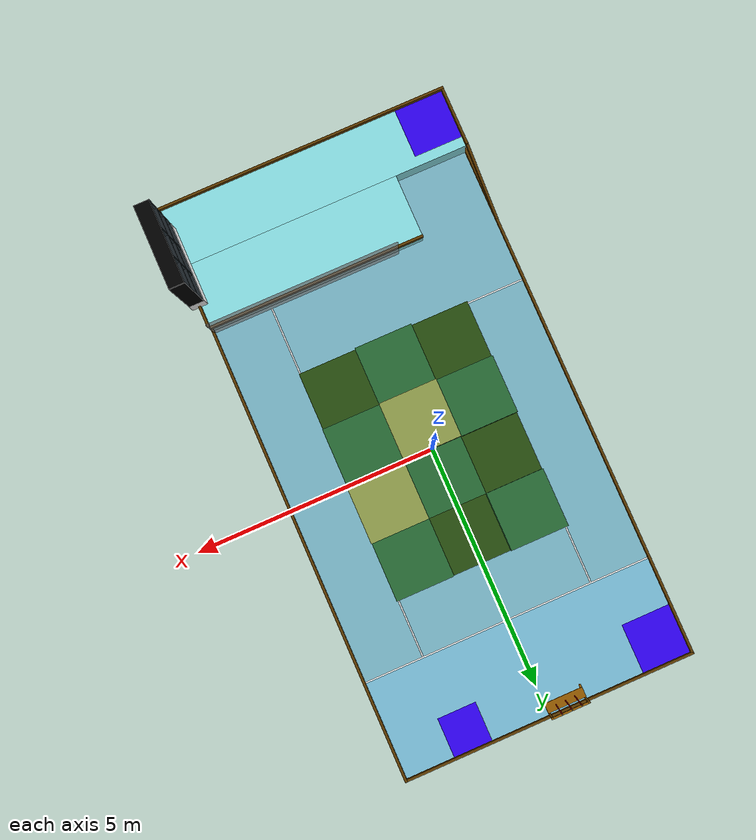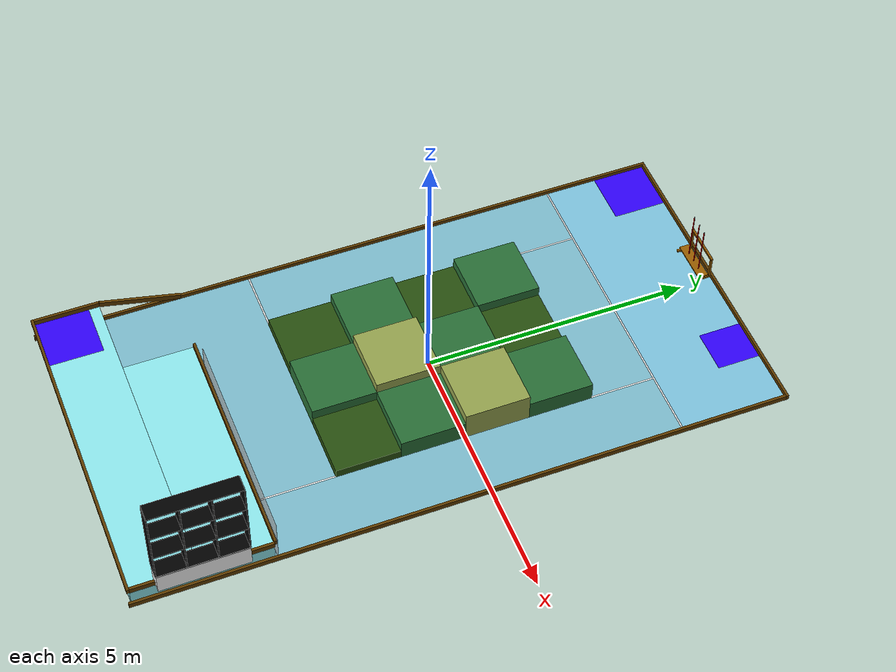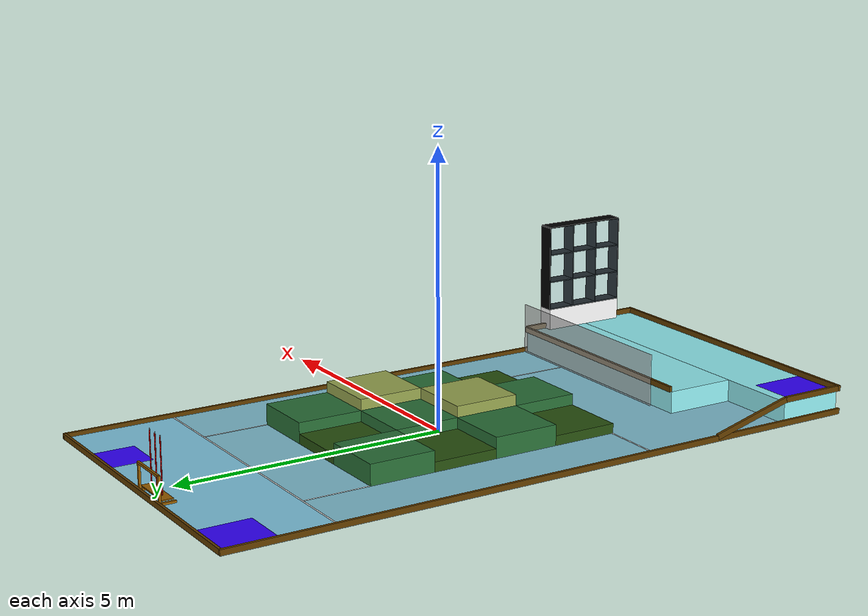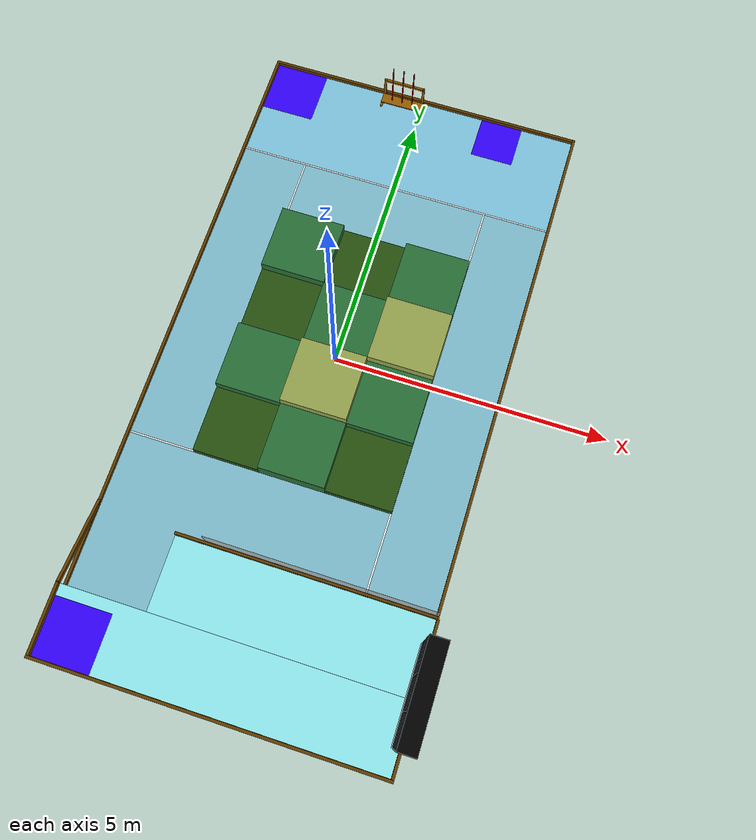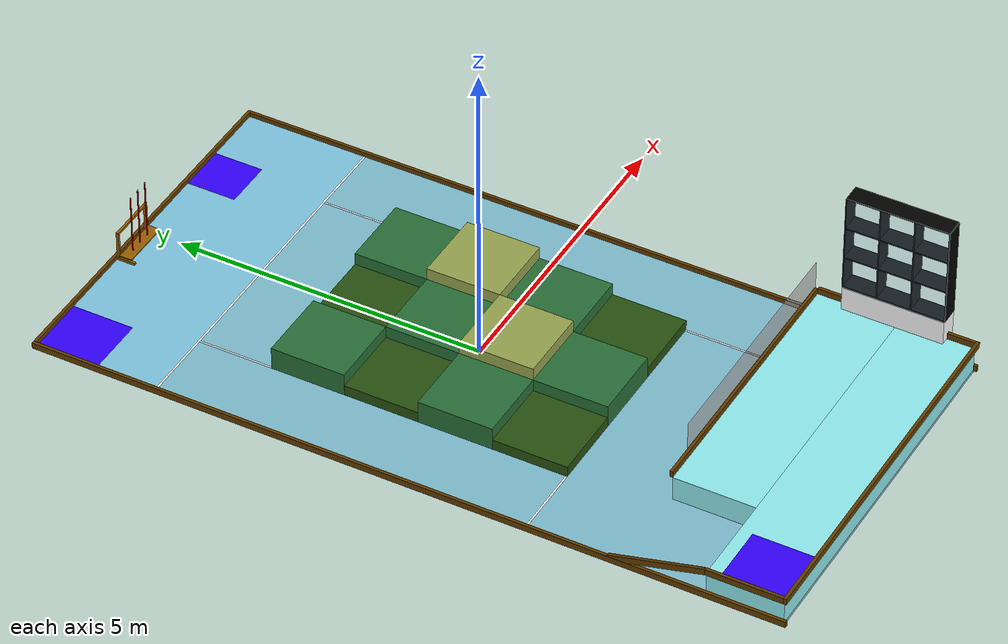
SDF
<sdf version="1.9">
 <world name="robocon_2026">
  <physics name="1ms" type="ignored">
   <max_step_size>0.001</max_step_size>
   <real_time_factor>1.0</real_time_factor>
  </physics>
  <plugin filename="gz-sim-physics-system" name="gz::sim::systems::Physics">
   <engine><filename>gz-physics-bullet-featherstone-plugin</filename></engine>
  </plugin>
  <plugin filename="gz-sim-user-commands-system" name="gz::sim::systems::UserCommands"/>
  <plugin filename="gz-sim-scene-broadcaster-system" name="gz::sim::systems::SceneBroadcaster"/>
  <plugin filename="gz-sim-imu-system" name="gz::sim::systems::Imu"/>
  <plugin filename="gz-sim-sensors-system" name="gz::sim::systems::Sensors">
   <render_engine>ogre2</render_engine>
  </plugin>
  <scene><ambient>0.4 0.4 0.4 1</ambient><background>0.7 0.7 0.7 1</background><shadows>true</shadows></scene>
  <light type="directional" name="sun">
   <pose>0 0 10 0 0 0</pose>
   <diffuse>0.9 0.85 0.8 1</diffuse>
   <specular>0.2 0.2 0.2 1</specular>
   <direction>0.5 0.1 -0.9</direction>
   <attenuation>
    <range>1000</range>
    <constant>0.9</constant>
    <linear>0.01</linear>
    <quadratic>0.001</quadratic>
   </attenuation>
  </light>
  <model name="game_field_floor_1">
   <static>true</static>
   <pose>0 4.6 0.025 0 0 0</pose>
   <link name="link">
    <collision name="collision"><geometry><box><size>6.0 2 0.05</size></box></geometry></collision>
    <visual name="visual">
     <geometry><box><size>6.0 2 0.05</size></box></geometry>
     <material>
      <ambient>0.5019607843 0.7803921569 0.8862745098 1</ambient>
      <diffuse>0.5019607843 0.7803921569 0.8862745098 1</diffuse>
      <specular>0.1 0.1 0.1 1</specular>
     </material>
    </visual>
   </link>
  </model>
  <model name="game_field_floor_2">
   <static>true</static>
   <pose>0 -1.4 0.025 0 0 0</pose>
   <link name="link">
    <collision name="collision"><geometry><box><size>6.0 10 0.05</size></box></geometry></collision>
    <visual name="visual">
     <geometry><box><size>6.0 10 0.05</size></box></geometry>
     <material>
      <ambient>0.5019607843 0.7490196078 0.8196078431 1</ambient>
      <diffuse>0.5019607843 0.7490196078 0.8196078431 1</diffuse>
      <specular>0.1 0.1 0.1 1</specular>
     </material>
    </visual>
   </link>
  </model>
  <model name="game_field_floor_3.1">
   <static>true</static>
   <pose>0.75 -4.55 0.25 0 0 0</pose>
   <link name="link">
    <collision name="collision"><geometry><box><size>4.5 1.3 0.4</size></box></geometry></collision>
    <visual name="visual">
     <geometry><box><size>4.5 1.3 0.4</size></box></geometry>
     <material>
      <ambient>0.5733333333 0.9333333333 0.9511111111 1</ambient>
      <diffuse>0.5733333333 0.9333333333 0.9511111111 1</diffuse>
      <specular>0.1 0.1 0.1 1</specular>
     </material>
    </visual>
   </link>
  </model>
  <model name="game_field_floor_3.2">
   <static>true</static>
   <pose>0 -5.8 0.25 0 0 0</pose>
   <link name="link">
    <collision name="collision"><geometry><box><size>6 1.2 0.4</size></box></geometry></collision>
    <visual name="visual">
     <geometry><box><size>6 1.2 0.4</size></box></geometry>
     <material>
      <ambient>0.5733333333 0.9333333333 0.9511111111 1</ambient>
      <diffuse>0.5733333333 0.9333333333 0.9511111111 1</diffuse>
      <specular>0.1 0.1 0.1 1</specular>
     </material>
    </visual>
   </link>
  </model>
  <model name="retry_zone_1">
   <static>true</static>
   <pose>-2.5 5.1 0.051 0 0 0</pose>
   <link name="link">
    <visual name="visual">
     <geometry><box><size>1 1 0.000001</size></box></geometry>
     <material><ambient>0.1960784314 0 1 1</ambient><diffuse>0.1960784314 0 1 1</diffuse></material>
    </visual>
   </link>
  </model>
  <model name="retry_zone_2">
   <static>true</static>
   <pose>1.6 5.2 0.051 0 0 0</pose>
   <link name="link">
    <visual name="visual">
     <geometry><box><size>0.8 0.8 0.000001</size></box></geometry>
     <material><ambient>0.1960784314 0 1 1</ambient><diffuse>0.1960784314 0 1 1</diffuse></material>
    </visual>
   </link>
  </model>
  <model name="retry_zone_3">
   <static>true</static>
   <pose>-2.5 -5.9 0.4501 0 0 0</pose>
   <link name="link">
    <visual name="visual">
     <geometry><box><size>1 1 0.000001</size></box></geometry>
     <material><ambient>0.1960784314 0 1 1</ambient><diffuse>0.1960784314 0 1 1</diffuse></material>
    </visual>
   </link>
  </model>
  <model name="mat_space_1_H">
   <static>true</static>
   <pose>0 3.615 0.05001 0 0 0</pose>
   <link name="link">
    <visual name="visual">
     <geometry><box><size>6 0.03 0.00001</size></box></geometry>
     <material><ambient>1 1 1 1</ambient><diffuse>1 1 1 1</diffuse><emissive>1 1 1 1</emissive></material>
    </visual>
   </link>
  </model>
  <model name="mat_space_2_V">
   <static>true</static>
   <pose>-1.785 3 0.05001 0 0 0</pose>
   <link name="link">
    <visual name="visual">
     <geometry><box><size>0.03 1.2 0.00001</size></box></geometry>
     <material><ambient>1 1 1 1</ambient><diffuse>1 1 1 1</diffuse><emissive>1 1 1 1</emissive></material>
    </visual>
   </link>
  </model>
  <model name="mat_space_3_V">
   <static>true</static>
   <pose>1.785 3 0.05001 0 0 0</pose>
   <link name="link">
    <visual name="visual">
     <geometry><box><size>0.03 1.2 0.00001</size></box></geometry>
     <material><ambient>1 1 1 1</ambient><diffuse>1 1 1 1</diffuse><emissive>1 1 1 1</emissive></material>
    </visual>
   </link>
  </model>
  <model name="mat_space_4_H">
   <static>true</static>
   <pose>-2.4 -2.385 0.05001 0 0 0</pose>
   <link name="link">
    <visual name="visual">
     <geometry><box><size>1.2 0.03 0.00001</size></box></geometry>
     <material><ambient>1 1 1 1</ambient><diffuse>1 1 1 1</diffuse><emissive>1 1 1 1</emissive></material>
    </visual>
   </link>
  </model>
  <model name="mat_space_5_V">
   <static>true</static>
   <pose>1.785 -3.125 0.05001 0 0 0</pose>
   <link name="link">
    <visual name="visual">
     <geometry><box><size>0.03 1.45 0.00001</size></box></geometry>
     <material><ambient>1 1 1 1</ambient><diffuse>1 1 1 1</diffuse><emissive>1 1 1 1</emissive></material>
    </visual>
   </link>
  </model>
  <model name="forest_box_1_400H">
   <static>true</static>
   <pose>-1.2 1.8 0.225 0 0 0</pose>
   <link name="link">
    <collision name="collision"><geometry><box><size>1.2 1.2 0.4</size></box></geometry></collision>
    <visual name="visual">
     <geometry><box><size>1.2 1.2 0.4</size></box></geometry>
     <material>
      <ambient>0.1647058824 0.4431372549 0.2196078431 1</ambient>
      <diffuse>0.1647058824 0.4431372549 0.2196078431 1</diffuse>
     </material>
    </visual>
   </link>
  </model>
  <model name="forest_box_2_200H">
   <static>true</static>
   <pose>0 1.8 0.125 0 0 0</pose>
   <link name="link">
    <collision name="collision"><geometry><box><size>1.2 1.2 0.2</size></box></geometry></collision>
    <visual name="visual">
     <geometry><box><size>1.2 1.2 0.2</size></box></geometry>
     <material>
      <ambient>0.1607843137 0.3215686275 0.06274509804 1</ambient>
      <diffuse>0.1607843137 0.3215686275 0.06274509804 1</diffuse>
     </material>
    </visual>
   </link>
  </model>
  <model name="forest_box_3_400H">
   <static>true</static>
   <pose>1.2 1.8 0.225 0 0 0</pose>
   <link name="link">
    <collision name="collision"><geometry><box><size>1.2 1.2 0.4</size></box></geometry></collision>
    <visual name="visual">
     <geometry><box><size>1.2 1.2 0.4</size></box></geometry>
     <material>
      <ambient>0.1647058824 0.4431372549 0.2196078431 1</ambient>
      <diffuse>0.1647058824 0.4431372549 0.2196078431 1</diffuse>
     </material>
    </visual>
   </link>
  </model>
  <model name="forest_box_4_200H">
   <static>true</static>
   <pose>-1.2 0.6 0.125 0 0 0</pose>
   <link name="link">
    <collision name="collision"><geometry><box><size>1.2 1.2 0.2</size></box></geometry></collision>
    <visual name="visual">
     <geometry><box><size>1.2 1.2 0.2</size></box></geometry>
     <material>
      <ambient>0.1607843137 0.3215686275 0.06274509804 1</ambient>
      <diffuse>0.1607843137 0.3215686275 0.06274509804 1</diffuse>
     </material>
    </visual>
   </link>
  </model>
  <model name="forest_box_5_400H">
   <static>true</static>
   <pose>0 0.6 0.225 0 0 0</pose>
   <link name="link">
    <collision name="collision"><geometry><box><size>1.2 1.2 0.4</size></box></geometry></collision>
    <visual name="visual">
     <geometry><box><size>1.2 1.2 0.4</size></box></geometry>
     <material>
      <ambient>0.1647058824 0.4431372549 0.2196078431 1</ambient>
      <diffuse>0.1647058824 0.4431372549 0.2196078431 1</diffuse>
     </material>
    </visual>
   </link>
  </model>
  <model name="forest_box_6_600H">
   <static>true</static>
   <pose>1.2 0.6 0.325 0 0 0</pose>
   <link name="link">
    <collision name="collision"><geometry><box><size>1.2 1.2 0.6</size></box></geometry></collision>
    <visual name="visual">
     <geometry><box><size>1.2 1.2 0.6</size></box></geometry>
     <material>
      <ambient>0.5960784314 0.6509803922 0.3137254902 1</ambient>
      <diffuse>0.5960784314 0.6509803922 0.3137254902 1</diffuse>
     </material>
    </visual>
   </link>
  </model>
  <model name="forest_box_7_400H">
   <static>true</static>
   <pose>-1.2 -0.6 0.225 0 0 0</pose>
   <link name="link">
    <collision name="collision"><geometry><box><size>1.2 1.2 0.4</size></box></geometry></collision>
    <visual name="visual">
     <geometry><box><size>1.2 1.2 0.4</size></box></geometry>
     <material>
      <ambient>0.1647058824 0.4431372549 0.2196078431 1</ambient>
      <diffuse>0.1647058824 0.4431372549 0.2196078431 1</diffuse>
     </material>
    </visual>
   </link>
  </model>
  <model name="forest_box_8_600H">
   <static>true</static>
   <pose>0 -0.6 0.325 0 0 0</pose>
   <link name="link">
    <collision name="collision"><geometry><box><size>1.2 1.2 0.6</size></box></geometry></collision>
    <visual name="visual">
     <geometry><box><size>1.2 1.2 0.6</size></box></geometry>
     <material>
      <ambient>0.5960784314 0.6509803922 0.3137254902 1</ambient>
      <diffuse>0.5960784314 0.6509803922 0.3137254902 1</diffuse>
     </material>
    </visual>
   </link>
  </model>
  <model name="forest_box_9_400H">
   <static>true</static>
   <pose>1.2 -0.6 0.225 0 0 0</pose>
   <link name="link">
    <collision name="collision"><geometry><box><size>1.2 1.2 0.4</size></box></geometry></collision>
    <visual name="visual">
     <geometry><box><size>1.2 1.2 0.4</size></box></geometry>
     <material>
      <ambient>0.1647058824 0.4431372549 0.2196078431 1</ambient>
      <diffuse>0.1647058824 0.4431372549 0.2196078431 1</diffuse>
     </material>
    </visual>
   </link>
  </model>
  <model name="forest_box_10_200H">
   <static>true</static>
   <pose>-1.2 -1.8 0.125 0 0 0</pose>
   <link name="link">
    <collision name="collision"><geometry><box><size>1.2 1.2 0.2</size></box></geometry></collision>
    <visual name="visual">
     <geometry><box><size>1.2 1.2 0.2</size></box></geometry>
     <material>
      <ambient>0.1607843137 0.3215686275 0.06274509804 1</ambient>
      <diffuse>0.1607843137 0.3215686275 0.06274509804 1</diffuse>
     </material>
    </visual>
   </link>
  </model>
  <model name="forest_box_11_400H">
   <static>true</static>
   <pose>0 -1.8 0.225 0 0 0</pose>
   <link name="link">
    <collision name="collision"><geometry><box><size>1.2 1.2 0.4</size></box></geometry></collision>
    <visual name="visual">
     <geometry><box><size>1.2 1.2 0.4</size></box></geometry>
     <material>
      <ambient>0.1647058824 0.4431372549 0.2196078431 1</ambient>
      <diffuse>0.1647058824 0.4431372549 0.2196078431 1</diffuse>
     </material>
    </visual>
   </link>
  </model>
  <model name="forest_box_12_200H">
   <static>true</static>
   <pose>1.2 -1.8 0.125 0 0 0</pose>
   <link name="link">
    <collision name="collision"><geometry><box><size>1.2 1.2 0.2</size></box></geometry></collision>
    <visual name="visual">
     <geometry><box><size>1.2 1.2 0.2</size></box></geometry>
     <material>
      <ambient>0.1607843137 0.3215686275 0.06274509804 1</ambient>
      <diffuse>0.1607843137 0.3215686275 0.06274509804 1</diffuse>
     </material>
    </visual>
   </link>
  </model>
  <model name="wall_north">
   <static>true</static>
   <pose>0 5.625 0.075 0 0 0</pose>
   <link name="link">
    <collision name="collision"><geometry><box><size>6.1 0.05 0.1</size></box></geometry></collision>
    <visual name="visual">
     <geometry><box><size>6.1 0.05 0.1</size></box></geometry>
     <material>
      <ambient>0.3921568627 0.2431372549 0 1</ambient>
      <diffuse>0.3921568627 0.2431372549 0 1</diffuse>
     </material>
    </visual>
   </link>
  </model>
  <model name="wall_south">
   <static>true</static>
   <pose>0 -6.425 0.5 0 0 0</pose>
   <link name="link">
    <collision name="collision"><geometry><box><size>6.1 0.05 0.1</size></box></geometry></collision>
    <visual name="visual">
     <geometry><box><size>6.1 0.05 0.1</size></box></geometry>
     <material>
      <ambient>0.3921568627 0.2431372549 0 1</ambient>
      <diffuse>0.3921568627 0.2431372549 0 1</diffuse>
     </material>
    </visual>
   </link>
  </model>
  <model name="wall_east">
   <static>true</static>
   <pose>3.025 -0.4 0.075 0 0 0</pose>
   <link name="link">
    <collision name="collision"><geometry><box><size>0.05 12.1 0.1</size></box></geometry></collision>
    <visual name="visual">
     <geometry><box><size>0.05 12.1 0.1</size></box></geometry>
     <material>
      <ambient>0.3921568627 0.2431372549 0 1</ambient>
      <diffuse>0.3921568627 0.2431372549 0 1</diffuse>
     </material>
    </visual>
   </link>
  </model>
  <model name="wall_west">
   <static>true</static>
   <pose>-3.025 -0.4 0.075 0 0 0</pose>
   <link name="link">
    <collision name="collision"><geometry><box><size>0.05 12.1 0.1</size></box></geometry></collision>
    <visual name="visual">
     <geometry><box><size>0.05 12.1 0.1</size></box></geometry>
     <material>
      <ambient>0.3921568627 0.2431372549 0 1</ambient>
      <diffuse>0.3921568627 0.2431372549 0 1</diffuse>
     </material>
    </visual>
   </link>
  </model>
  <model name="wall_south_3.1">
   <static>true</static>
   <pose>0.75 -3.875 0.5 0 0 0</pose>
   <link name="link">
    <collision name="collision"><geometry><box><size>4.5 0.05 0.1</size></box></geometry></collision>
    <visual name="visual">
     <geometry><box><size>4.5 0.05 0.1</size></box></geometry>
     <material>
      <ambient>0.3921568627 0.2431372549 0 1</ambient>
      <diffuse>0.3921568627 0.2431372549 0 1</diffuse>
     </material>
    </visual>
   </link>
  </model>
  <model name="wall_west_3.2">
   <static>true</static>
   <pose>-3.025 -5.8 0.5 0 0 0</pose>
   <link name="link">
    <collision name="collision"><geometry><box><size>0.05 1.2 0.1</size></box></geometry></collision>
    <visual name="visual">
     <geometry><box><size>0.05 1.2 0.1</size></box></geometry>
     <material>
      <ambient>0.3921568627 0.2431372549 0 1</ambient>
      <diffuse>0.3921568627 0.2431372549 0 1</diffuse>
     </material>
    </visual>
   </link>
  </model>
  <model name="wall_east_3.2">
   <static>true</static>
   <pose>3.025 -5.15 0.5 0 0 0</pose>
   <link name="link">
    <collision name="collision"><geometry><box><size>0.05 2.5 0.1</size></box></geometry></collision>
    <visual name="visual">
     <geometry><box><size>0.05 2.5 0.1</size></box></geometry>
     <material>
      <ambient>0.3921568627 0.2431372549 0 1</ambient>
      <diffuse>0.3921568627 0.2431372549 0 1</diffuse>
     </material>
    </visual>
   </link>
  </model>
  <model name="wall_west_ramp">
   <static>true</static>
   <pose>-3.025 -4.45 0.3 -0.261799 0 0</pose>
   <link name="link">
    <collision name="collision"><geometry><box><size>0.05 1.55241 0.1</size></box></geometry></collision>
    <visual name="visual">
     <geometry><box><size>0.05 1.55241 0.1</size></box></geometry>
     <material>
      <ambient>0.3921568627 0.2431372549 0 1</ambient>
      <diffuse>0.3921568627 0.2431372549 0 1</diffuse>
     </material>
    </visual>
   </link>
  </model>
  <model name="acrylic_fence">
   <static>true</static>
   <pose>1.025 -3.85 0.5 0 0 1.570796327</pose>
   <link name="link">
    <collision name="collision"><geometry><box><size>0.01 3.975 1.0</size></box></geometry></collision>
    <visual name="visual">
     <geometry><box><size>0.01 3.975 1.0</size></box></geometry>
     <transparency>0.3</transparency>
     <cast_shadows>false</cast_shadows>
    </visual>
   </link>
  </model>
  <model name="tictactoe_rack">
   <static>true</static>
   <pose>3.025 -5.15 0.45 0 0 1.570796327</pose>
   <link name="link">
    <collision name="base_col">
     <pose>0 0 0.2 0 0 0</pose>
     <geometry><box><size>1.62 0.32 0.4</size></box></geometry>
    </collision>
    <visual name="base_vis">
     <pose>0 0 0.2 0 0 0</pose>
     <geometry><box><size>1.62 0.32 0.4</size></box></geometry>
     <material><ambient>1 1 1 1</ambient><diffuse>1 1 1 1</diffuse></material>
    </visual>
    <collision name="v1_col">
     <pose>-0.81 0 1.21 0 0 0</pose>
     <geometry><box><size>0.02 0.3 1.62</size></box></geometry>
    </collision>
    <visual name="v1">
     <pose>-0.81 0 1.21 0 0 0</pose>
     <geometry><box><size>0.02 0.3 1.62</size></box></geometry>
     <material><ambient>0 0 0 1</ambient><diffuse>0 0 0 1</diffuse></material>
    </visual>
    <collision name="v2_col">
     <pose>-0.27 0 1.21 0 0 0</pose>
     <geometry><box><size>0.02 0.3 1.62</size></box></geometry>
    </collision>
    <visual name="v2">
     <pose>-0.27 0 1.21 0 0 0</pose>
     <geometry><box><size>0.02 0.3 1.62</size></box></geometry>
     <material><ambient>0 0 0 1</ambient><diffuse>0 0 0 1</diffuse></material>
    </visual>
    <collision name="v3_col">
     <pose>0.27 0 1.21 0 0 0</pose>
     <geometry><box><size>0.02 0.3 1.62</size></box></geometry>
    </collision>
    <visual name="v3">
     <pose>0.27 0 1.21 0 0 0</pose>
     <geometry><box><size>0.02 0.3 1.62</size></box></geometry>
     <material><ambient>0 0 0 1</ambient><diffuse>0 0 0 1</diffuse></material>
    </visual>
    <collision name="v4_col">
     <pose>0.81 0 1.21 0 0 0</pose>
     <geometry><box><size>0.02 0.3 1.62</size></box></geometry>
    </collision>
    <visual name="v4">
     <pose>0.81 0 1.21 0 0 0</pose>
     <geometry><box><size>0.02 0.3 1.62</size></box></geometry>
     <material><ambient>0 0 0 1</ambient><diffuse>0 0 0 1</diffuse></material>
    </visual>
    <collision name="h1_col">
     <pose>0 0 0.41 0 0 0</pose>
     <geometry><box><size>1.62 0.3 0.02</size></box></geometry>
    </collision>
    <visual name="h1">
     <pose>0 0 0.41 0 0 0</pose>
     <geometry><box><size>1.62 0.3 0.02</size></box></geometry>
     <material><ambient>0 0 0 1</ambient><diffuse>0 0 0 1</diffuse></material>
    </visual>
    <collision name="h2_col">
     <pose>0 0 0.95 0 0 0</pose>
     <geometry><box><size>1.62 0.3 0.02</size></box></geometry>
    </collision>
    <visual name="h2">
     <pose>0 0 0.95 0 0 0</pose>
     <geometry><box><size>1.62 0.3 0.02</size></box></geometry>
     <material><ambient>0 0 0 1</ambient><diffuse>0 0 0 1</diffuse></material>
    </visual>
    <collision name="h3_col">
     <pose>0 0 1.49 0 0 0</pose>
     <geometry><box><size>1.62 0.3 0.02</size></box></geometry>
    </collision>
    <visual name="h3">
     <pose>0 0 1.49 0 0 0</pose>
     <geometry><box><size>1.62 0.3 0.02</size></box></geometry>
     <material><ambient>0 0 0 1</ambient><diffuse>0 0 0 1</diffuse></material>
    </visual>
    <collision name="h4_col">
     <pose>0 0 2.03 0 0 0</pose>
     <geometry><box><size>1.62 0.3 0.02</size></box></geometry>
    </collision>
    <visual name="h4">
     <pose>0 0 2.03 0 0 0</pose>
     <geometry><box><size>1.62 0.3 0.02</size></box></geometry>
     <material><ambient>0 0 0 1</ambient><diffuse>0 0 0 1</diffuse></material>
    </visual>
    <collision name="back_col">
     <pose>0 0.15 1.21 0 0 0</pose>
     <geometry><box><size>1.62 0.01 1.62</size></box></geometry>
    </collision>
    <visual name="acrylic_back">
     <pose>0 0.15 1.21 0 0 0</pose>
     <geometry><box><size>1.62 0.01 1.62</size></box></geometry>
     <material><ambient>0.7 0.9 1 0.2</ambient><diffuse>0.7 0.9 1 0.2</diffuse></material>
    </visual>
   </link>
  </model>
  <model name="palm_staff_assembly">
   <static>false</static>
   <pose>-0.6 5.450 0.1 0 0 0</pose>
   <link name="link">
    <inertial>
     <pose>0 0 0.5 0 0 0</pose>
     <mass>2.0</mass>
     <inertia><ixx>0.168</ixx><ixy>0</ixy><ixz>0</ixz><iyy>0.168</iyy><iyz>0</iyz><izz>0.004</izz></inertia>
    </inertial>
    <collision name="pipe_col">
     <pose>0 0 0.5 0 0 0</pose>
     <geometry><cylinder><radius>0.01015</radius><length>1.0</length></cylinder></geometry>
    </collision>
    <visual name="pipe_visual">
     <pose>0 0 0.5 0 0 0</pose>
     <geometry><cylinder><radius>0.01015</radius><length>1.0</length></cylinder></geometry>
     <material><ambient>1 0 0 1</ambient><diffuse>1 0 0 1</diffuse></material>
    </visual>
    <collision name="coupler_col">
     <pose>0 0 1.03 0 1.5708 0</pose>
     <geometry><mesh><uri>model://30PM_STEEL/meshes/coupler.dae</uri><scale>1.0 1.0 1.0</scale></mesh></geometry>
    </collision>
    <visual name="coupler_visual">
     <pose>0 0 1.03 0 1.5708 0</pose>
     <geometry><mesh><uri>model://30PM_STEEL/meshes/coupler.dae</uri><scale>1.0 1.0 1.0</scale></mesh></geometry>
     <material>
      <ambient>0.69 0.69 0.69 1</ambient>
      <diffuse>0.69 0.69 0.69 1</diffuse>
      <specular>0.1 0.1 0.1 1</specular>
     </material>
    </visual>
   </link>
  </model>
  <model name="spear_staff_assembly">
   <static>false</static>
   <pose>-0.4 5.450 0.1 0 0 0</pose>
   <link name="link">
    <inertial>
     <pose>0 0 0.5 0 0 0</pose>
     <mass>2.0</mass>
     <inertia><ixx>0.168</ixx><ixy>0</ixy><ixz>0</ixz><iyy>0.168</iyy><iyz>0</iyz><izz>0.004</izz></inertia>
    </inertial>
    <collision name="pipe_col">
     <pose>0 0 0.5 0 0 0</pose>
     <geometry><cylinder><radius>0.01015</radius><length>1.0</length></cylinder></geometry>
    </collision>
    <visual name="pipe_visual">
     <pose>0 0 0.5 0 0 0</pose>
     <geometry><cylinder><radius>0.01015</radius><length>1.0</length></cylinder></geometry>
     <material><ambient>1 0 0 1</ambient><diffuse>1 0 0 1</diffuse></material>
    </visual>
    <collision name="coupler_col">
     <pose>0 0 1.03 0 1.5708 0</pose>
     <geometry><mesh><uri>model://30PM_STEEL/meshes/coupler.dae</uri><scale>1.0 1.0 1.0</scale></mesh></geometry>
    </collision>
    <visual name="coupler_visual">
     <pose>0 0 1.03 0 1.5708 0</pose>
     <geometry><mesh><uri>model://30PM_STEEL/meshes/coupler.dae</uri><scale>1.0 1.0 1.0</scale></mesh></geometry>
     <material>
      <ambient>0.69 0.69 0.69 1</ambient>
      <diffuse>0.69 0.69 0.69 1</diffuse>
      <specular>0.1 0.1 0.1 1</specular>
     </material>
    </visual>
   </link>
  </model>
  <model name="fist_staff_assembly">
   <static>false</static>
   <pose>-0.2 5.450 0.1 0 0 0</pose>
   <link name="link">
    <inertial>
     <pose>0 0 0.5 0 0 0</pose>
     <mass>2.0</mass>
     <inertia><ixx>0.168</ixx><ixy>0</ixy><ixz>0</ixz><iyy>0.168</iyy><iyz>0</iyz><izz>0.004</izz></inertia>
    </inertial>
    <collision name="pipe_col">
     <pose>0 0 0.5 0 0 0</pose>
     <geometry><cylinder><radius>0.01015</radius><length>1.0</length></cylinder></geometry>
    </collision>
    <visual name="pipe_visual">
     <pose>0 0 0.5 0 0 0</pose>
     <geometry><cylinder><radius>0.01015</radius><length>1.0</length></cylinder></geometry>
     <material><ambient>1 0 0 1</ambient><diffuse>1 0 0 1</diffuse></material>
    </visual>
    <collision name="coupler_col">
     <pose>0 0 1.03 0 1.5708 0</pose>
     <geometry><mesh><uri>model://30PM_STEEL/meshes/coupler.dae</uri><scale>1.0 1.0 1.0</scale></mesh></geometry>
    </collision>
    <visual name="coupler_visual">
     <pose>0 0 1.03 0 1.5708 0</pose>
     <geometry><mesh><uri>model://30PM_STEEL/meshes/coupler.dae</uri><scale>1.0 1.0 1.0</scale></mesh></geometry>
     <material>
      <ambient>0.69 0.69 0.69 1</ambient>
      <diffuse>0.69 0.69 0.69 1</diffuse>
      <specular>0.1 0.1 0.1 1</specular>
     </material>
    </visual>
   </link>
  </model>
  <model name="staff_rack">
   <pose>-0.4 5.45 0.05 0 0 0</pose>
   <static>true</static>
   <link name="link">
    <visual name="left_foot_visual">
     <pose>-0.38 0 0.02 0 0 0</pose>
     <geometry><box><size>0.04 0.30 0.04</size></box></geometry>
     <material><ambient>0.608 0.373 0 1</ambient><diffuse>0.608 0.373 0 1</diffuse></material>
    </visual>
    <collision name="left_foot_collision">
     <pose>-0.38 0 0.02 0 0 0</pose>
     <geometry><box><size>0.04 0.30 0.04</size></box></geometry>
    </collision>
    <visual name="right_foot_visual">
     <pose>0.38 0 0.02 0 0 0</pose>
     <geometry><box><size>0.04 0.30 0.04</size></box></geometry>
     <material><ambient>0.608 0.373 0 1</ambient><diffuse>0.608 0.373 0 1</diffuse></material>
    </visual>
    <collision name="right_foot_collision">
     <pose>0.38 0 0.02 0 0 0</pose>
     <geometry><box><size>0.04 0.30 0.04</size></box></geometry>
    </collision>
    <visual name="left_post_visual">
     <pose>-0.38 0.13 0.27 0 0 0</pose>
     <geometry><box><size>0.04 0.04 0.46</size></box></geometry>
     <material><ambient>0.608 0.373 0 1</ambient><diffuse>0.608 0.373 0 1</diffuse></material>
    </visual>
    <collision name="left_post_collision">
     <pose>-0.38 0.13 0.27 0 0 0</pose>
     <geometry><box><size>0.04 0.04 0.46</size></box></geometry>
    </collision>
    <visual name="right_post_visual">
     <pose>0.38 0.13 0.27 0 0 0</pose>
     <geometry><box><size>0.04 0.04 0.46</size></box></geometry>
     <material><ambient>0.608 0.373 0 1</ambient><diffuse>0.608 0.373 0 1</diffuse></material>
    </visual>
    <collision name="right_post_collision">
     <pose>0.38 0.13 0.27 0 0 0</pose>
     <geometry><box><size>0.04 0.04 0.46</size></box></geometry>
    </collision>
    <visual name="top_bar_visual">
     <pose>0 0.13 0.48 0 0 0</pose>
     <geometry><box><size>0.80 0.04 0.04</size></box></geometry>
     <material><ambient>0.608 0.373 0 1</ambient><diffuse>0.608 0.373 0 1</diffuse></material>
    </visual>
    <collision name="top_bar_collision">
     <pose>0 0.13 0.48 0 0 0</pose>
     <geometry><box><size>0.80 0.04 0.04</size></box></geometry>
    </collision>
    <visual name="shelf_visual">
     <pose>0 0.0 0.08 0 0 0</pose>
     <geometry><box><size>0.80 0.20 0.02</size></box></geometry>
     <material><ambient>0.608 0.373 0 1</ambient><diffuse>0.608 0.373 0 1</diffuse></material>
    </visual>
    <collision name="shelf_collision">
     <pose>0 0.0 0.08 0 0 0</pose>
     <geometry><box><size>0.80 0.20 0.02</size></box></geometry>
    </collision>
   </link>
  </model>
 </world>
</sdf>
